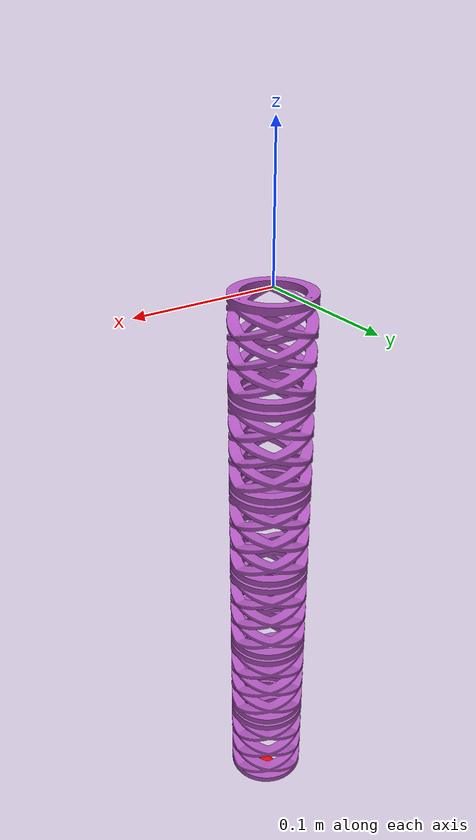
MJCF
<mujoco model="onshape">
  <compiler angle="radian" meshdir="meshes/" autolimits="true" />

  <asset>
    <mesh name="helix_sim_1_1" file="helix_sim_1_1.stl"/>
    <mesh name="plate1" file="plate1.stl"/>
    <mesh name="helix_sim_1_2" file="helix_sim_1_2.stl"/>
    <mesh name="plate2" file="plate2.stl"/>
    <mesh name="helix_sim_1_4" file="helix_sim_1_4.stl"/>
    <mesh name="helix_sim_1_3" file="helix_sim_1_3.stl"/>
  </asset>

  <worldbody>
    <geom pos="0 0 -0.008" quat="0 -1 0 0" type="mesh" rgba="0.682353 0.333333 0.737255 1" mesh="helix_sim_1_1"/>
    <body name="helix_sim_1_2" pos="0 0 -0.028" quat="0.707107 0.707107 0 0">
      <inertial pos="2.43618e-08 -0.0100007 -1.11881e-09" quat="0.707107 0 0 0.707107" mass="0.00971217" diaginertia="6.67843e-06 3.65105e-06 3.65105e-06"/>
      <joint type="hinge" name="1" pos="0 0 0" axis="0 0 1" />
      <joint type="hinge" name="lat1" pos="0 0 0" axis="1 0 0" />
      <joint type="slide" limited="true" range="0 0.1" name="comp1" pos="0 0 0" axis="0 1 0" />
      <geom pos="0 0.02 0" quat="0.707107 0.707107 0 0" type="mesh" rgba="0.682353 0.333333 0.737255 1" mesh="helix_sim_1_2"/>
      <body name="med_plate" pos="0 -0.02 0">
        <inertial pos="4.62948e-07 -0.0259027 1.62246e-08" quat="0.499999 0.499999 0.500001 0.500001" mass="0.090246" diaginertia="0.000108352 6.56865e-05 6.56854e-05"/>
        <joint type="hinge" name="2" pos="0 0 0" axis="0 0 1" />
        <joint type="hinge" name="lat2" pos="0 0 0" axis="1 0 0" />
        <joint type="slide" limited="true" range="0 0.1" name="comp2" pos="0 0 0" axis="0 1 0" />
        <geom pos="0 0.0375 0" quat="0.707107 0.707107 0 0" type="mesh" rgba="0.682353 0.333333 0.737255 1" mesh="helix_sim_1_4"/>
        <geom pos="0 0.04 0" quat="0.707107 0.707107 0 0" type="mesh" rgba="0.682353 0.333333 0.737255 1" mesh="helix_sim_1_3"/>
        <body name="helix_sim_1_2_2" pos="0 -0.0525 0" quat="1 0 0 0">
          <inertial pos="2.43618e-08 -0.0100007 -1.11881e-09" quat="0.707107 0 0 0.707107" mass="0.00971217" diaginertia="6.67843e-06 3.65105e-06 3.65105e-06"/>
          <joint type="hinge" name="3" pos="0 0 0" axis="0 0 1" />
          <joint type="hinge" name="lat3" pos="0 0 0" axis="1 0 0" />
          <joint type="slide" limited="true" range="0 0.1" name="comp3" pos="0 0 0" axis="0 1 0" />
          <geom pos="0 0.02 0" quat="0.707107 0.707107 0 0" type="mesh" rgba="0.682353 0.333333 0.737255 1" mesh="helix_sim_1_2"/>
          <body name="med_plate_2" pos="0 -0.02 0" quat="1 0 0 0">
            <inertial pos="4.62948e-07 -0.0259027 1.62246e-08" quat="0.499999 0.499999 0.500001 0.500001" mass="0.090246" diaginertia="0.000108352 6.56865e-05 6.56854e-05"/>
            <joint type="hinge" name="4" pos="0 0 0" axis="0 0 1" />
            <joint type="hinge" name="lat4" pos="0 0 0" axis="1 0 0" />
            <joint type="slide" limited="true" range="0 0.1" name="comp4" pos="0 0 0" axis="0 1 0" />
            <geom pos="0 0.0375 0" quat="0.707107 0.707107 0 0" type="mesh" rgba="0.682353 0.333333 0.737255 1" mesh="helix_sim_1_4"/>
            <geom pos="0 0.04 0" quat="0.707107 0.707107 0 0" type="mesh" rgba="0.682353 0.333333 0.737255 1" mesh="helix_sim_1_3"/>
            <body name="helix_sim_1_2_3" pos="0 -0.0525 0" quat="1 0 0 0">
              <inertial pos="2.43618e-08 -0.0100007 -1.11881e-09" quat="0.707107 0 0 0.707107" mass="0.00971217" diaginertia="6.67843e-06 3.65105e-06 3.65105e-06"/>
              <joint type="hinge" name="5" pos="0 0 0" axis="0 0 1" />
              <joint type="hinge" name="lat5" pos="0 0 0" axis="1 0 0" />
              <joint type="slide" limited="true" range="0 0.1" name="comp5" pos="0 0 0" axis="0 1 0" />
              <geom pos="0 0.02 0" quat="0.707107 0.707107 0 0" type="mesh" rgba="0.682353 0.333333 0.737255 1" mesh="helix_sim_1_2"/>
              <body name="med_plate_3" pos="0 -0.02 0">
                <inertial pos="4.62948e-07 -0.0259027 1.62246e-08" quat="0.499999 0.499999 0.500001 0.500001" mass="0.090246" diaginertia="0.000108352 6.56865e-05 6.56854e-05"/>
                <joint type="hinge" name="6" pos="0 0 0" axis="0 0 1" />
                <joint type="hinge" name="lat6" pos="0 0 0" axis="1 0 0" />
                <joint type="slide" limited="true" range="0 0.1" name="comp6" pos="0 0 0" axis="0 1 0" />
                <geom pos="0 0.0375 0" quat="0.707107 0.707107 0 0" type="mesh" rgba="0.682353 0.333333 0.737255 1" mesh="helix_sim_1_4"/>
                <geom pos="0 0.04 0" quat="0.707107 0.707107 0 0" type="mesh" rgba="0.682353 0.333333 0.737255 1" mesh="helix_sim_1_3"/>
                <body name="helix_sim_1_2_4" pos="0 -0.0525 0">
                  <inertial pos="2.43618e-08 -0.0100007 -1.11881e-09" quat="0.707107 0 0 0.707107" mass="0.00971217" diaginertia="6.67843e-06 3.65105e-06 3.65105e-06"/>
                  <joint type="hinge" name="7" pos="0 0 0" axis="0 0 1" />
                  <joint type="hinge" name="lat7" pos="0 0 0" axis="1 0 0" />
                  <joint type="slide" limited="true" range="0 0.1" name="comp7" pos="0 0 0" axis="0 1 0" />
                  <geom pos="0 0.02 0" quat="0.707107 0.707107 0 0" type="mesh" rgba="0.682353 0.333333 0.737255 1" mesh="helix_sim_1_2"/>
                  <body name="med_plate_4" pos="0 -0.02 0">
                    <inertial pos="4.62948e-07 -0.0259027 1.62246e-08" quat="0.499999 0.499999 0.500001 0.500001" mass="0.090246" diaginertia="0.000108352 6.56865e-05 6.56854e-05"/>
                    <joint type="hinge" name="8" pos="0 0 0" axis="0 0 1" />
                    <joint type="hinge" name="lat8" pos="0 0 0" axis="1 0 0" />
                    <joint type="slide" limited="true" range="0 0.1" name="comp8" pos="0 0 0" axis="0 1 0" />
                    <geom pos="0 0.0375 0" quat="0.707107 0.707107 0 0" type="mesh" rgba="0.682353 0.333333 0.737255 1" mesh="helix_sim_1_4"/>
                    <geom pos="0 0.04 0" quat="0.707107 0.707107 0 0" type="mesh" rgba="0.682353 0.333333 0.737255 1" mesh="helix_sim_1_3"/>
                    <body name="helix_sim_1_2_5" pos="0 -0.0525 0" quat="1 0 0 0">
                      <inertial pos="2.43618e-08 -0.0100007 -1.11881e-09" quat="0.707107 0 0 0.707107" mass="0.00971217" diaginertia="6.67843e-06 3.65105e-06 3.65105e-06"/>
                      <joint type="hinge" name="9" pos="0 0 0" axis="0 0 1" />
                      <joint type="hinge" name="lat9" pos="0 0 0" axis="1 0 0" />
                      <joint type="slide" limited="true" range="0 0.1" name="comp9" pos="0 0 0" axis="0 1 0" />
                      <geom pos="0 0.02 0" quat="0.707107 0.707107 0 0" type="mesh" rgba="0.682353 0.333333 0.737255 1" mesh="helix_sim_1_2"/>
                      <body name="med_plate_5" pos="0 -0.02 0" quat="1 0 0 0">
                        <inertial pos="4.62948e-07 -0.0259027 1.62246e-08" quat="0.499999 0.499999 0.500001 0.500001" mass="0.090246" diaginertia="0.000108352 6.56865e-05 6.56854e-05"/>
                        <joint type="hinge" name="10" pos="0 0 0" axis="0 0 1" />
                        <joint type="hinge" name="lat10" pos="0 0 0" axis="1 0 0" />
                        <joint type="slide" limited="true" range="0 0.1" name="comp10" pos="0 0 0" axis="0 1 0" />
                        <geom pos="0 0.0375 0" quat="0.707107 0.707107 0 0" type="mesh" rgba="0.682353 0.333333 0.737255 1" mesh="helix_sim_1_4"/>
                        <geom pos="0 0.04 0" quat="0.707107 0.707107 0 0" type="mesh" rgba="0.682353 0.333333 0.737255 1" mesh="helix_sim_1_3"/>
                        <body name="helix_sim_1_2_6" pos="0 -0.0525 0" quat="1 0 0 0">
                          <inertial pos="2.43618e-08 -0.0100007 -1.11881e-09" quat="0.707107 0 0 0.707107" mass="0.00971217" diaginertia="6.67843e-06 3.65105e-06 3.65105e-06"/>
                          <joint type="hinge" name="11" pos="0 0 0" axis="0 0 1" />
                          <joint type="hinge" name="lat11" pos="0 0 0" axis="1 0 0" />
                          <joint type="slide" limited="true" range="0 0.1" name="comp11" pos="0 0 0" axis="0 1 0" />
                          <geom pos="0 0.02 0" quat="0.707107 0.707107 0 0" type="mesh" rgba="0.682353 0.333333 0.737255 1" mesh="helix_sim_1_2"/>
                          <body name="end_cap_2" pos="0 -0.02 0" quat="0 1 0 0">
                            <inertial pos="2.43618e-08 -0.0100007 -1.11881e-09" quat="0.707107 0 0 0.707107" mass="0.00971217" diaginertia="6.67843e-06 3.65105e-06 3.65105e-06"/>
                            <site name="ee_cog" pos="2.43618e-08 -0.0100007 -1.11881e-09"/>
                            <joint type="hinge" name="12" pos="0 0 0" axis="0 0 1" />
                            <joint type="hinge" name="lat12" pos="0 0 0" axis="1 0 0" />
                            <joint type="slide" limited="true" range="0 0.1" name="comp12" pos="0 0 0" axis="0 -1 0" />
                            <geom pos="0 0.02 0" quat="0.707107 0.707107 0 0" type="mesh" rgba="0.682353 0.333333 0.737255 1" mesh="helix_sim_1_1"/>
                            <body name="attachment" pos="0.0 0.04 0.0" quat="0 0 0 1">
                              <site name="ee" rgba="1 0 0 1" size="0.01" group="1"/>
                            </body>
                          </body>
                        </body>
                      </body>
                    </body>
                  </body>
                </body>
              </body>
            </body>
          </body>
        </body>
      </body>
    </body>
  </worldbody>
</mujoco>
